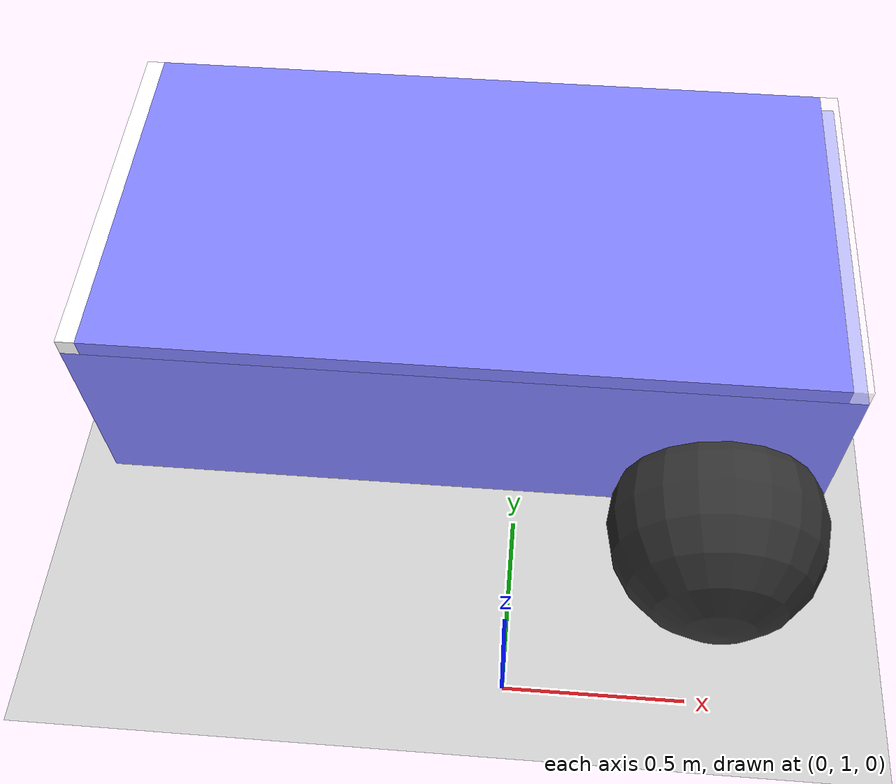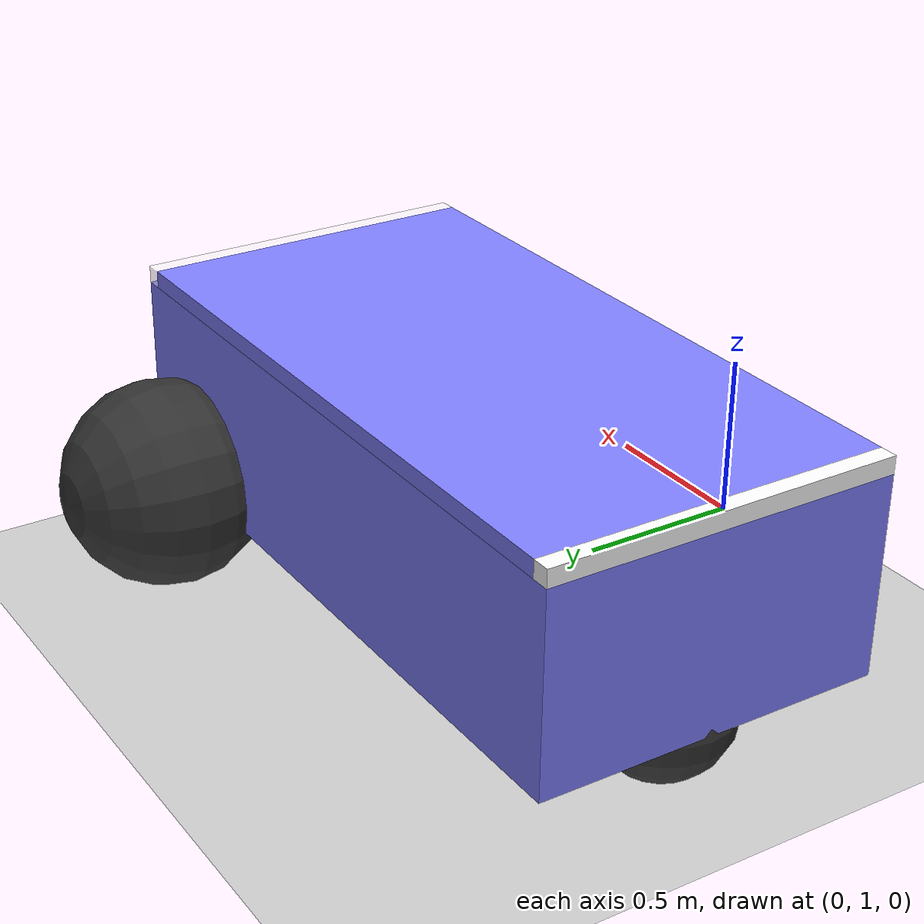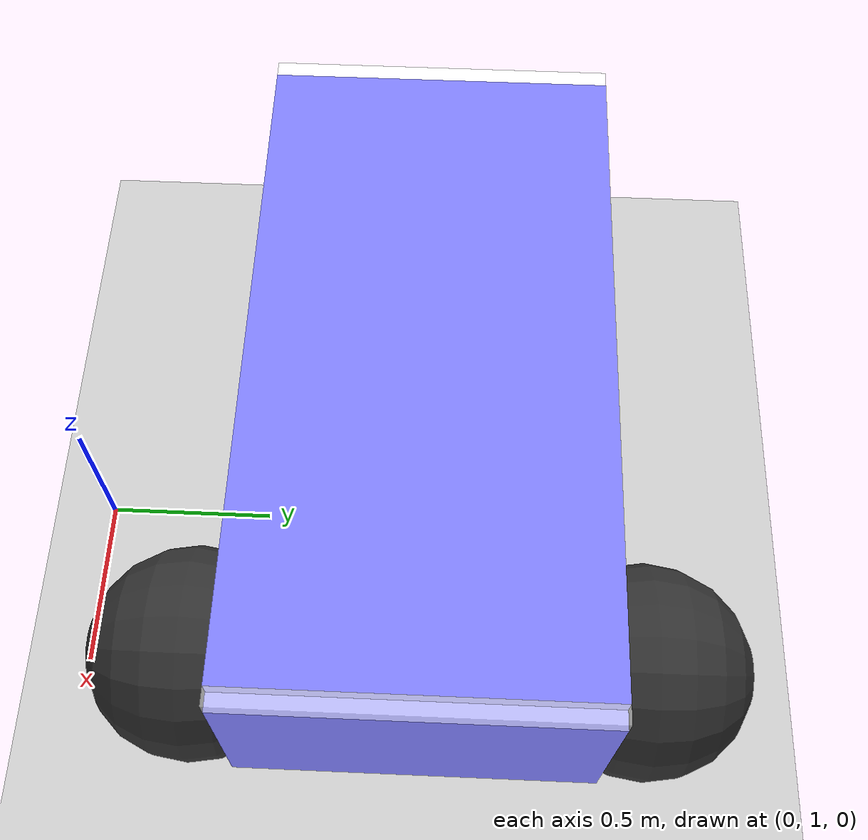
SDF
<?xml version="1.0" ?>
<!--
  Gazebo blink visual plugin demo
-->

<sdf version="1.11">
  <world name="blink_visual">

    <physics name="1ms" type="ignored">
      <max_step_size>0.001</max_step_size>
      <real_time_factor>1.0</real_time_factor>
    </physics>
    <plugin
      filename="gz-sim-physics-system"
      name="gz::sim::systems::Physics">
    </plugin>
    <plugin
      filename="gz-sim-sensors-system"
      name="gz::sim::systems::Sensors">
      <render_engine>ogre2</render_engine>
      <background_color>0.8 0.8 0.8</background_color>
    </plugin>
    <plugin
      filename="gz-sim-user-commands-system"
      name="gz::sim::systems::UserCommands">
    </plugin>
    <plugin
      filename="gz-sim-scene-broadcaster-system"
      name="gz::sim::systems::SceneBroadcaster">
    </plugin>

    <light type="directional" name="sun">
      <cast_shadows>true</cast_shadows>
      <pose>0 0 10 0 0 0</pose>
      <diffuse>1 1 1 1</diffuse>
      <specular>0.5 0.5 0.5 1</specular>
      <attenuation>
        <range>1000</range>
        <constant>0.9</constant>
        <linear>0.01</linear>
        <quadratic>0.001</quadratic>
      </attenuation>
      <direction>-0.5 0.1 -0.9</direction>
    </light>

    <model name="ground_plane">
      <static>true</static>
      <link name="link">
        <collision name="collision">
          <geometry>
            <plane>
              <normal>0 0 1</normal>
              <size>100 100</size>
            </plane>
          </geometry>
        </collision>
        <visual name="visual">
          <geometry>
            <plane>
              <normal>0 0 1</normal>
              <size>100 100</size>
            </plane>
          </geometry>
          <material>
            <ambient>0.8 0.8 0.8 1</ambient>
            <diffuse>0.8 0.8 0.8 1</diffuse>
            <specular>0.8 0.8 0.8 1</specular>
          </material>
        </visual>
      </link>
    </model>

    <model name='vehicle_blue'>
      <pose>0 2 0.325 0 -0 0</pose>

      <link name='chassis_base'>
        <pose>-0.151427 -0 0.175 0 -0 0</pose>
        <inertial>
          <mass>1.14395</mass>
          <inertia>
            <ixx>0.126164</ixx>
            <ixy>0</ixy>
            <ixz>0</ixz>
            <iyy>0.416519</iyy>
            <iyz>0</iyz>
            <izz>0.481014</izz>
          </inertia>
        </inertial>
        <visual name='visual'>
          <geometry>
            <box>
              <size>2.0 1 0.568726</size>
            </box>
          </geometry>
          <material>
            <ambient>0.5 0.5 1.0 1</ambient>
            <diffuse>0.5 0.5 1.0 1</diffuse>
            <specular>0.0 0.0 1.0 1</specular>
          </material>
        </visual>
        <collision name='collision'>
          <geometry>
            <box>
              <size>2.0 1 0.568726</size>
            </box>
          </geometry>
        </collision>
      </link>

      <link name="chassis_top">
        <pose>-0.151427 -0 0.484363 0 -0 0</pose>
        <inertial>
          <mass>1.14395</mass>
          <inertia>
            <ixx>0.126164</ixx>
            <ixy>0</ixy>
            <ixz>0</ixz>
            <iyy>0.416519</iyy>
            <iyz>0</iyz>
            <izz>0.481014</izz>
          </inertia>
        </inertial>
        <visual name="visual">
          <geometry>
            <box>
              <size>1.9 1 0.05</size>
            </box>
          </geometry>
          <material>
            <ambient>0.5 0.5 1.0 1</ambient>
            <diffuse>0.5 0.5 1.0 1</diffuse>
            <specular>0.0 0.0 1.0 1</specular>
          </material>
        </visual>
        <collision name="collision">
          <geometry>
            <box>
              <size>1.9 1 0.05</size>
            </box>
          </geometry>
        </collision>
      </link>

      <link name="front_led">
        <pose>-1.126427 0 0.484363 0 0 0</pose>
         <inertial auto="true" />
        <visual name="front_led_visual">
          <geometry>
            <box>
              <size>0.05 1 0.05</size>
            </box>
          </geometry>
          <material>
            <ambient>1.0 1.0 1.0 1</ambient>
            <diffuse>1.0 1.0 1.0 1</diffuse>
            <specular>1.0 1.0 1.0 1</specular>
          </material>
        </visual>
        <collision name="front_led_collision">
          <geometry>
            <box>
              <size>0.05 1 0.05</size>
            </box>
          </geometry>
        </collision>
        <light type="point" name="link_light_point">
          <pose>0 0 0.025 0 0 0</pose>
          <diffuse>0 0 1 1</diffuse>
          <specular>.1 .1 .1 1</specular>
          <attenuation>
            <range>2</range>
            <linear>0.02</linear>
            <constant>0.05</constant>
            <quadratic>0.01</quadratic>
          </attenuation>
          <cast_shadows>false</cast_shadows>
        </light>
      </link>

      <link name="back_led">
        <pose>0.823573 0 0.484363 0 0 0</pose>
        <inertial auto="true" />
        <visual name="back_led_visual">
          <geometry>
            <box>
              <size>0.05 1 0.05</size>
            </box>
          </geometry>
          <material>
            <ambient>1.0 1.0 1.0 0.5</ambient>
            <diffuse>1.0 1.0 1.0 0.5</diffuse>
            <specular>1.0 1.0 1.0 0.5</specular>
          </material>
        </visual>
        <collision name="back_led_collision">
          <geometry>
            <box>
              <size>0.05 1 0.05</size>
            </box>
          </geometry>
        </collision>
        <light type="point" name="link_light_point">
          <pose>0 0 -0.025 0 0 0</pose>
          <diffuse>0 0 1 1</diffuse>
          <specular>.1 .1 .1 1</specular>
          <attenuation>
            <range>2</range>
            <linear>0.02</linear>
            <constant>0.05</constant>
            <quadratic>0.01</quadratic>
          </attenuation>
          <cast_shadows>false</cast_shadows>
        </light>
      </link>

      <link name='left_wheel'>
        <pose>0.554283 0.625029 -0.025 -1.5707 0 0</pose>
        <inertial>
          <mass>2</mass>
          <inertia>
            <ixx>0.145833</ixx>
            <ixy>0</ixy>
            <ixz>0</ixz>
            <iyy>0.145833</iyy>
            <iyz>0</iyz>
            <izz>0.125</izz>
          </inertia>
        </inertial>
        <visual name='visual'>
          <geometry>
            <sphere>
              <radius>0.3</radius>
            </sphere>
          </geometry>
          <material>
            <ambient>0.2 0.2 0.2 1</ambient>
            <diffuse>0.2 0.2 0.2 1</diffuse>
            <specular>0.2 0.2 0.2 1</specular>
          </material>
        </visual>
        <collision name='collision'>
          <geometry>
            <sphere>
              <radius>0.3</radius>
            </sphere>
          </geometry>
          <surface>
            <friction>
              <ode>
                <mu>1</mu>
                <mu2>1</mu2>
                <slip1>0.035</slip1>
                <slip2>0</slip2>
                <fdir1>0 0 1</fdir1>
              </ode>
              <bullet>
                <friction>1</friction>
                <friction2>1</friction2>
                <rolling_friction>0.1</rolling_friction>
              </bullet>
            </friction>
          </surface>
        </collision>
      </link>

      <link name='right_wheel'>
        <pose>0.554282 -0.625029 -0.025 -1.5707 0 0</pose>
        <inertial>
          <mass>2</mass>
          <inertia>
            <ixx>0.145833</ixx>
            <ixy>0</ixy>
            <ixz>0</ixz>
            <iyy>0.145833</iyy>
            <iyz>0</iyz>
            <izz>0.125</izz>
          </inertia>
        </inertial>
        <visual name='visual'>
          <geometry>
            <sphere>
              <radius>0.3</radius>
            </sphere>
          </geometry>
          <material>
            <ambient>0.2 0.2 0.2 1</ambient>
            <diffuse>0.2 0.2 0.2 1</diffuse>
            <specular>0.2 0.2 0.2 1</specular>
          </material>
        </visual>
        <collision name='collision'>
          <geometry>
            <sphere>
              <radius>0.3</radius>
            </sphere>
          </geometry>
          <surface>
            <friction>
              <ode>
                <mu>1</mu>
                <mu2>1</mu2>
                <slip1>0.035</slip1>
                <slip2>0</slip2>
                <fdir1>0 0 1</fdir1>
              </ode>
              <bullet>
                <friction>1</friction>
                <friction2>1</friction2>
                <rolling_friction>0.1</rolling_friction>
              </bullet>
            </friction>
          </surface>
        </collision>
      </link>

      <link name='caster'>
        <pose>-0.957138 -0 -0.125 0 -0 0</pose>
        <inertial>
          <mass>1</mass>
          <inertia>
            <ixx>0.1</ixx>
            <ixy>0</ixy>
            <ixz>0</ixz>
            <iyy>0.1</iyy>
            <iyz>0</iyz>
            <izz>0.1</izz>
          </inertia>
        </inertial>
        <visual name='visual'>
          <geometry>
            <sphere>
              <radius>0.2</radius>
            </sphere>
          </geometry>
          <material>
            <ambient>0.2 0.2 0.2 1</ambient>
            <diffuse>0.2 0.2 0.2 1</diffuse>
            <specular>0.2 0.2 0.2 1</specular>
          </material>
        </visual>
        <collision name='collision'>
          <geometry>
            <sphere>
              <radius>0.2</radius>
            </sphere>
          </geometry>
        </collision>
      </link>

      <joint name='left_wheel_joint' type='revolute'>
        <parent>chassis_base</parent>
        <child>left_wheel</child>
        <axis>
          <xyz>0 0 1</xyz>
          <limit>
            <lower>-1.79769e+308</lower>
            <upper>1.79769e+308</upper>
          </limit>
        </axis>
      </joint>

      <joint name='right_wheel_joint' type='revolute'>
        <parent>chassis_base</parent>
        <child>right_wheel</child>
        <axis>
          <xyz>0 0 1</xyz>
          <limit>
            <lower>-1.79769e+308</lower>
            <upper>1.79769e+308</upper>
          </limit>
        </axis>
      </joint>

      <joint name="base_to_top_joint" type="fixed">
        <parent>chassis_base</parent>
        <child>chassis_top</child>
      </joint>

      <joint name="top_to_front_led_joint" type="fixed">
        <parent>chassis_top</parent>
        <child>front_led</child>
      </joint>

      <joint name="top_to_back_led_joint" type="fixed">
        <parent>chassis_top</parent>
        <child>back_led</child>
      </joint>

      <joint name='caster_wheel' type='ball'>
        <parent>chassis_base</parent>
        <child>caster</child>
      </joint>

      <plugin
        filename="gz-sim-diff-drive-system"
        name="gz::sim::systems::DiffDrive">
        <left_joint>left_wheel_joint</left_joint>
        <right_joint>right_wheel_joint</right_joint>
        <wheel_separation>1.25</wheel_separation>
        <wheel_radius>0.3</wheel_radius>
        <odom_publish_frequency>1</odom_publish_frequency>
        <max_linear_acceleration>1</max_linear_acceleration>
        <min_linear_acceleration>-1</min_linear_acceleration>
        <max_angular_acceleration>2</max_angular_acceleration>
        <min_angular_acceleration>-2</min_angular_acceleration>
        <max_linear_velocity>0.5</max_linear_velocity>
        <min_linear_velocity>-0.5</min_linear_velocity>
        <max_angular_velocity>1</max_angular_velocity>
        <min_angular_velocity>-1</min_angular_velocity>
      </plugin>

    </model>
  </world>
</sdf>
